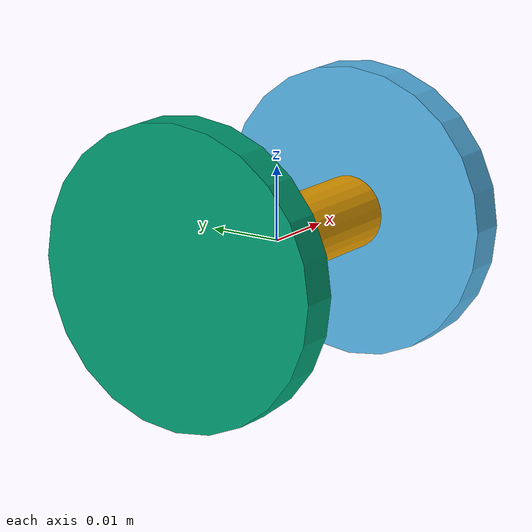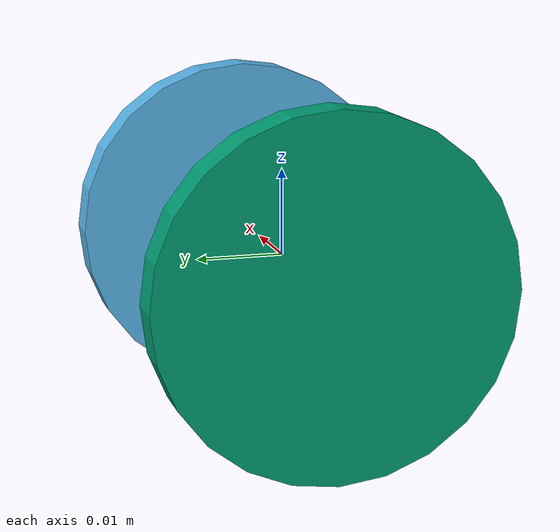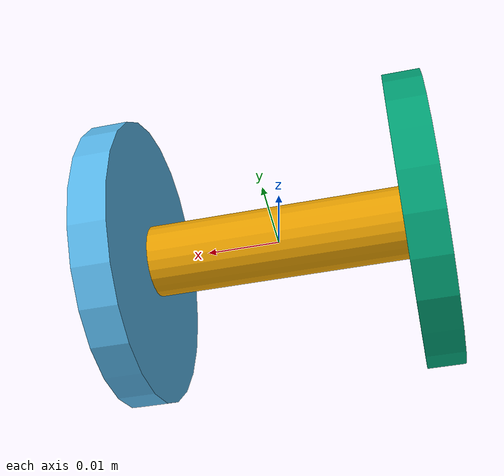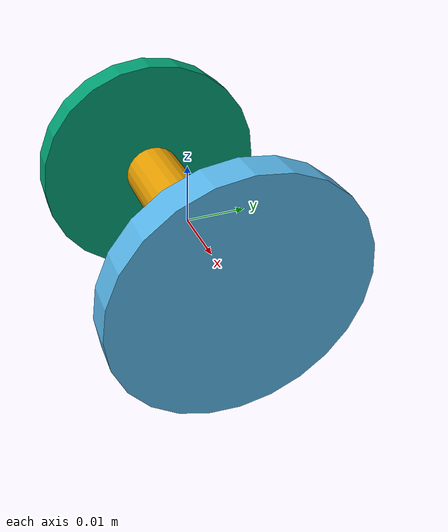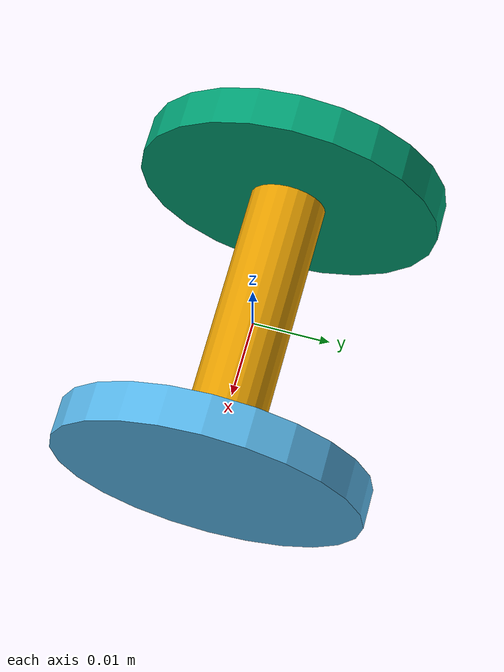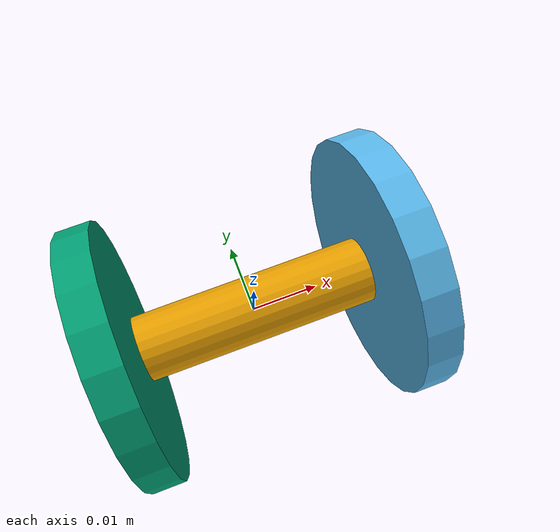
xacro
<?xml version="1.0"?>
<robot xmlns:xacro="http://www.ros.org/wiki/xacro" name="unicycle">

    <xacro:property name="wheel_rad" value="0.02" />
    <xacro:property name="wheel_len" value="0.005" />

    <xacro:property name="axel_rad" value="0.005" />
    <xacro:property name="axel_len" value="0.035" />

    <xacro:macro name="axle" params="prefix" >
        <link name="${prefix}_axle">
            <visual>
                <geometry>
                    <cylinder radius="${axel_rad}" length="${axel_len}"/>
                </geometry>
                <origin rpy="0 ${3.14/2} 0"/>
            </visual>
                <collision>
                        <geometry>
                            <cylinder radius="${axel_rad}" length="${axel_len}"/>
                        </geometry>
                        <origin rpy="0 ${3.14/2} 0"/>
                    </collision>
                </link>
    </xacro:macro>

    <xacro:macro name="wheel" params="prefix offset">
        <link name="${prefix}_wheel">
            <visual>
                <geometry>
                    <cylinder radius="${wheel_rad}" length="${wheel_len}"/>
                </geometry>
                <origin xyz="${offset}" rpy="0 ${3.14/2} 0"/>
            </visual>
            <collision>
                <geometry>
                    <cylinder radius="${wheel_len}" length="${wheel_len}"/>
                </geometry>
                <origin xyz="${offset}" rpy="0 ${3.14/2} 0"/>
            </collision>
        </link>

    </xacro:macro>

    <xacro:axle prefix="back"/>
    <xacro:wheel prefix="right" offset=".02 0 0"/>
    <xacro:wheel prefix="left" offset="-.02 0 0"/>

    <joint name="r_back_axle" type="revolute">
        <parent link="back_axle"/>
        <child link="right_wheel"/>
        <limit lower="0.0" upper="${2*3.14}" effort="0.0" velocity="0.0"/>
    </joint>
    <joint name="l_back_axle" type="revolute">
        <parent link="back_axle"/>
        <child link="left_wheel"/>
        <limit lower="0.0" upper="${2*3.14}" effort="0.0" velocity="0.0"/>
    </joint>

</robot>
